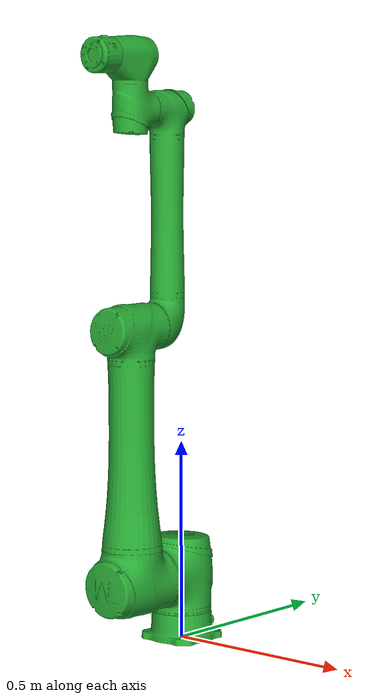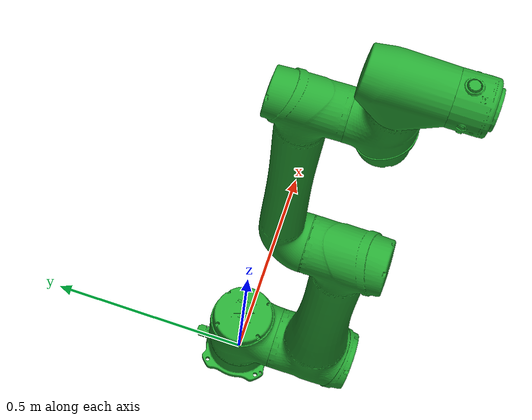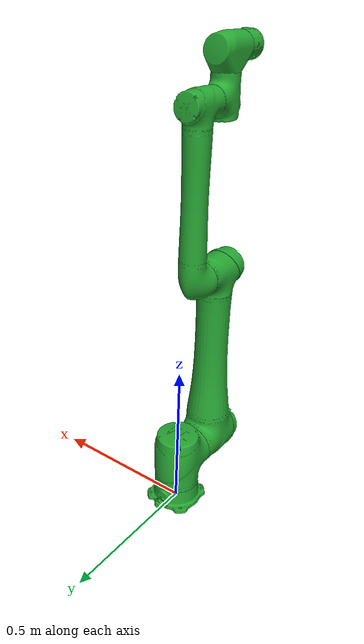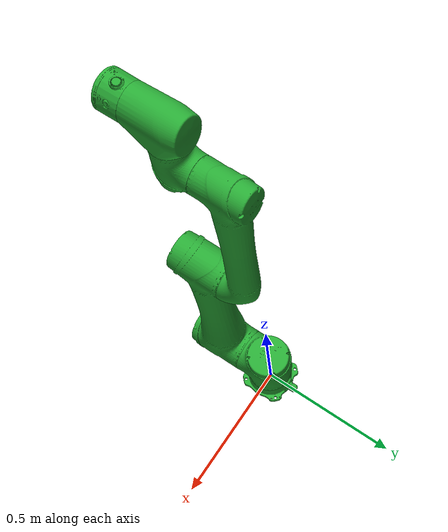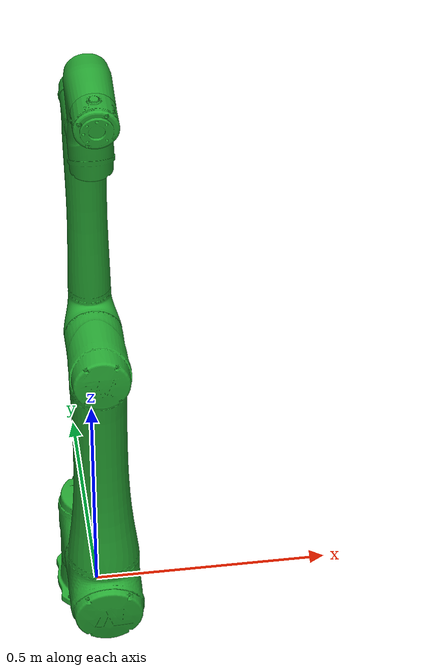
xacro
<?xml version="1.0"?>
<robot xmlns:xacro="http://www.ros.org/wiki/xacro" name="tm20sx">
    <xacro:arg name="initial_positions_file" default="initial_positions.yaml" />

    <!-- Import tm20sx urdf file -->
    <xacro:include filename="$(find tm_description)/xacro/tm20sx.urdf.xacro" />

    <!-- Import control_xacro -->
    <xacro:include filename="tm20sx.ros2_control.xacro" />

    <xacro:tm20sx_ros2_control name="FakeSystem" initial_positions_file="$(arg initial_positions_file)"/>

</robot>

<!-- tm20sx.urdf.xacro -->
<robot xmlns:xacro="http://www.ros.org/wiki/xacro" name="tm20sx">
  <!-- ARGUMENTS -->
  <xacro:arg name="ns" default="" />
  <xacro:arg name="prefix" default="" />
  <xacro:arg name="color" default="none" />
  <xacro:arg name="trans_hw_iface" default="hardware_interface/PositionJointInterface" />

  <xacro:include filename="$(find tm_description)/xacro/macro.gazebo.xacro" />
  <xacro:include filename="$(find tm_description)/xacro/macro.transmission.xacro" />
  <xacro:include filename="$(find tm_description)/xacro/macro.materials.xacro" />

  <!-- Import TM Cobot: tm20sx robot description file -->
  <!-- If the user want to use newly generated named robot description file as user_defined.urdf.xacro, -->
  <!-- you must modify 'macro.tm20sx-nominal.urdf.xacro' to 'user_defined.urdf.xacro'  -->
  <xacro:include filename="$(find tm_description)/xacro/macro.tm20sx-nominal.urdf.xacro" />

  <xacro:tmr_gazebo ns="$(arg ns)" prefix="$(arg prefix)" />
  <xacro:tmr_transmission prefix="$(arg prefix)" hw_iface="$(arg trans_hw_iface)" />

  <!-- Import TM Cobot: mesh.color.default -->
  <xacro:property name="color" value="$(arg color)"/>
  <xacro:if value="${color == 'none'}">
    <xacro:tm20sx ns="$(arg ns)" prefix="$(arg prefix)" color="emeraldgreen" format="dae"/>
  </xacro:if>

  <!-- Import TM Cobot: mesh.color.specific-->
  <xacro:unless value="${color == 'none'}">
    <xacro:tm20sx ns="$(arg ns)" prefix="$(arg prefix)" color="${color}" format="obj" />
  </xacro:unless>

</robot>

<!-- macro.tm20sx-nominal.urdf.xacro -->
<robot xmlns:xacro="http://www.ros.org/wiki/xacro">

  <xacro:include filename="$(find tm_description)/xacro/macro.inertial.xacro" />

  <xacro:macro name="tm20sx" params="ns prefix color format
    joint_1_lower_limit:=${radians(-360)}    joint_1_upper_limit:=${radians(360)}
    joint_2_lower_limit:=${radians(-360)}    joint_2_upper_limit:=${radians(360)}
    joint_3_lower_limit:=${radians(-162)}    joint_3_upper_limit:=${radians(162)}
    joint_4_lower_limit:=${radians(-360)}    joint_4_upper_limit:=${radians(360)}
    joint_5_lower_limit:=${radians(-360)}    joint_5_upper_limit:=${radians(360)}
    joint_6_lower_limit:=${radians(-360)}    joint_6_upper_limit:=${radians(360)}
    joint_1_velocity_limit:=${radians(130)}
    joint_2_velocity_limit:=${radians(95)}
    joint_3_velocity_limit:=${radians(125)}
    joint_4_velocity_limit:=${radians(160)}
    joint_5_velocity_limit:=${radians(190)}
    joint_6_velocity_limit:=${radians(225)}
    joint_1_effort_limit:=${459}
    joint_2_effort_limit:=${484}
    joint_3_effort_limit:=${229}
    joint_4_effort_limit:=${70}
    joint_5_effort_limit:=${54}
    joint_6_effort_limit:=${34}
    safety_limits:=false safety_pos_margin:=0.15
    safety_k_position:=20">

    <xacro:property name="damping_factor" value="0.000"/>
    <xacro:property name="d1" value="${damping_factor*0.1}"/>
    <xacro:property name="d2" value="${damping_factor*0.1}"/>
    <xacro:property name="d3" value="${damping_factor*0.1}"/>
    <xacro:property name="d4" value="${damping_factor*0.1}"/>
    <xacro:property name="d5" value="${damping_factor*0.1}"/>
    <xacro:property name="d6" value="${damping_factor*0.1}"/>

    <xacro:property name="friction_factor" value="0.000"/>
    <xacro:property name="f1" value="${friction_factor*0.1}"/>
    <xacro:property name="f2" value="${friction_factor*0.1}"/>
    <xacro:property name="f3" value="${friction_factor*0.1}"/>
    <xacro:property name="f4" value="${friction_factor*0.1}"/>
    <xacro:property name="f5" value="${friction_factor*0.1}"/>
    <xacro:property name="f6" value="${friction_factor*0.1}"/>

    <!-- Inertia parameters -->
    <xacro:property name="mass_0" value="1.0" />
    <xacro:property name="mass_1" value="8.200" />
    <xacro:property name="mass_2" value="15.017" />
    <xacro:property name="mass_3" value="3.329" />
    <xacro:property name="mass_4" value="1.770" />
    <xacro:property name="mass_5" value="1.770" />
    <xacro:property name="mass_6" value="0.340" />

    <xacro:property name="unit_factor" value="0.000001"/>
    <xacro:property name="ixx_1" value="${25963.078*unit_factor}" />
    <xacro:property name="ixx_2" value="${56178.979*unit_factor}" />
    <xacro:property name="ixx_3" value="${4694.5431*unit_factor}" />
    <xacro:property name="ixx_4" value="${2046.0318*unit_factor}" />
    <xacro:property name="ixx_5" value="${2046.0318*unit_factor}" />
    <xacro:property name="ixx_6" value="${250.85804*unit_factor}" />

    <xacro:property name="iyy_1" value="${37671.229*unit_factor}" />
    <xacro:property name="iyy_2" value="${1212610.4*unit_factor}" />
    <xacro:property name="iyy_3" value="${134098.54*unit_factor}" />
    <xacro:property name="iyy_4" value="${3171.8293*unit_factor}" />
    <xacro:property name="iyy_5" value="${3171.8293*unit_factor}" />
    <xacro:property name="iyy_6" value="${252.81701*unit_factor}" />

    <xacro:property name="izz_1" value="${38856.370*unit_factor}" />
    <xacro:property name="izz_2" value="${1231270.0*unit_factor}" />
    <xacro:property name="izz_3" value="${135525.91*unit_factor}" />
    <xacro:property name="izz_4" value="${3478.9518*unit_factor}" />
    <xacro:property name="izz_5" value="${3478.9518*unit_factor}" />
    <xacro:property name="izz_6" value="${312.21304*unit_factor}" />

    <xacro:property name="specified_color_arms" default="false" />
    <xacro:property name="prefix_monochrome_command" default="true" />

    <!-- If other applications conflict with the color definition of URDF, try disable_prefix_color to close it -->
    <xacro:property name="disable_prefix_color" default="false" />
    <xacro:if value="${disable_prefix_color}">
      <prefix_monochrome_command value="false"/>
    </xacro:if>
    <xacro:if value="${format == 'stl'}">
      <specified_color_arms value="true"/>
      <prefix_monochrome_command value="false"/>
    </xacro:if>
    <xacro:if value="${prefix_monochrome_command}">
      <xacro:tm_materials/>
    </xacro:if>

<!--LinkDescription-->
  <link name="${prefix}link_0">
    <visual>
      <geometry>
        <mesh filename="package://tm_description/meshes/tm20sx/visual/link0.${format}" />
      </geometry>
      <xacro:if value="${specified_color_arms}">
        <xacro:tm_material_whitegraphite />
      </xacro:if>
      <xacro:if value="${prefix_monochrome_command}">
        <material name="${color}" />
      </xacro:if>
    </visual>
    <collision>
      <geometry>
        <mesh filename="package://tm_description/meshes/tm20sx/collision/link0_c.stl" />
      </geometry>
    </collision>
<!--inertial-->
    <xacro:cylinder_inertial_z radius="0.06" length="0.05" mass="${mass_0}">
      <origin rpy="0.000000 0.000000 0.000000" xyz="0.000000 0.000000 0.000000" />
    </xacro:cylinder_inertial_z>
  </link>
  <joint name="${prefix}joint_1" type="revolute">
    <parent link="${prefix}link_0" />
    <child link="${prefix}link_1" />
    <origin rpy="0.000000 -0.000000 0.000000" xyz="0.000000 0.000000 0.165200" />
    <axis xyz="0 0 1" />
<!--limit-->
    <limit lower="${joint_1_lower_limit}" upper="${joint_1_upper_limit}" velocity="${joint_1_velocity_limit}" effort="${joint_1_effort_limit}" />
    <xacro:if value="${safety_limits}">
      <safety_controller soft_lower_limit="${joint_1_lower_limit + safety_pos_margin}" soft_upper_limit="${joint_1_upper_limit - safety_pos_margin}" k_position="${safety_k_position}" k_velocity="0.0" />
    </xacro:if>
    <dynamics damping="${d1}" friction="${f1}" />
  </joint>
  <link name="${prefix}link_1">
    <visual>
      <geometry>
        <mesh filename="package://tm_description/meshes/tm20sx/visual/link1.${format}" />
      </geometry>
      <xacro:if value="${specified_color_arms}">
        <xacro:tm_material_darkolive />
      </xacro:if>
      <xacro:if value="${prefix_monochrome_command}">
        <material name="${color}" />
      </xacro:if>
    </visual>
    <collision>
      <geometry>
        <mesh filename="package://tm_description/meshes/tm20sx/collision/link1_c.stl" />
      </geometry>
    </collision>
    <inertial>
      <origin rpy="0.000000 0.000000 0.000000" xyz="0.000000 0.000000 0.000000" />
      <mass value="${mass_1}" />
      <inertia ixx="${ixx_1}" ixy="0.000000" ixz="0.000000" iyy="${iyy_1}" iyz="0.000000" izz="${izz_1}" />
    </inertial>
  </link>
  <joint name="${prefix}joint_2" type="revolute">
    <parent link="${prefix}link_1" />
    <child link="${prefix}link_2" />
    <origin rpy="-1.570796 -1.570796 0.000000" xyz="0.000000 0.000000 0.000000" />
    <axis xyz="0 0 1" />
<!--limit-->
    <limit lower="${joint_2_lower_limit}" upper="${joint_2_upper_limit}" velocity="${joint_2_velocity_limit}" effort="${joint_2_effort_limit}" />
    <xacro:if value="${safety_limits}">
      <safety_controller soft_lower_limit="${joint_2_lower_limit + safety_pos_margin}" soft_upper_limit="${joint_2_upper_limit - safety_pos_margin}" k_position="${safety_k_position}" k_velocity="0.0" />
    </xacro:if>
    <dynamics damping="${d2}" friction="${f2}" />
  </joint>
  <link name="${prefix}link_2">
    <visual>
      <geometry>
        <mesh filename="package://tm_description/meshes/tm20sx/visual/link2.${format}" />
      </geometry>
      <xacro:if value="${specified_color_arms}">
        <xacro:tm_material_darkolive />
      </xacro:if>
      <xacro:if value="${prefix_monochrome_command}">
        <material name="${color}" />
      </xacro:if>
    </visual>
    <collision>
      <geometry>
        <mesh filename="package://tm_description/meshes/tm20sx/collision/link2_c.stl" />
      </geometry>
    </collision>
    <inertial>
      <origin rpy="0.000000 0.000000 0.000000" xyz="0.000000 0.000000 0.000000" />
      <mass value="${mass_2}" />
      <inertia ixx="${ixx_2}" ixy="0.000000" ixz="0.000000" iyy="${iyy_2}" iyz="0.000000" izz="${izz_2}" />
    </inertial>
  </link>
  <joint name="${prefix}joint_3" type="revolute">
    <parent link="${prefix}link_2" />
    <child link="${prefix}link_3" />
    <origin rpy="0.000000 -0.000000 0.000000" xyz="0.636100 0.000000 0.000000" />
    <axis xyz="0 0 1" />
<!--limit-->
    <limit lower="${joint_3_lower_limit}" upper="${joint_3_upper_limit}" velocity="${joint_3_velocity_limit}" effort="${joint_3_effort_limit}" />
    <xacro:if value="${safety_limits}">
      <safety_controller soft_lower_limit="${joint_3_lower_limit + safety_pos_margin}" soft_upper_limit="${joint_3_upper_limit - safety_pos_margin}" k_position="${safety_k_position}" k_velocity="0.0" />
    </xacro:if>
    <dynamics damping="${d3}" friction="${f3}" />
  </joint>
  <link name="${prefix}link_3">
    <visual>
      <geometry>
        <mesh filename="package://tm_description/meshes/tm20sx/visual/link3.${format}" />
      </geometry>
      <xacro:if value="${specified_color_arms}">
        <xacro:tm_material_gold />
      </xacro:if>
      <xacro:if value="${prefix_monochrome_command}">
        <material name="${color}" />
      </xacro:if>
    </visual>
    <collision>
      <geometry>
        <mesh filename="package://tm_description/meshes/tm20sx/collision/link3_c.stl" />
      </geometry>
    </collision>
    <inertial>
      <origin rpy="0.000000 0.000000 0.000000" xyz="0.000000 0.000000 0.000000" />
      <mass value="${mass_3}" />
      <inertia ixx="${ixx_3}" ixy="0.000000" ixz="0.000000" iyy="${iyy_3}" iyz="0.000000" izz="${izz_3}" />
    </inertial>
  </link>
  <joint name="${prefix}joint_4" type="revolute">
    <parent link="${prefix}link_3" />
    <child link="${prefix}link_4" />
    <origin rpy="0.000000 -0.000000 1.570796" xyz="0.532400 0.000000 -0.181800" />
    <axis xyz="0 0 1" />
<!--limit-->
    <limit lower="${joint_4_lower_limit}" upper="${joint_4_upper_limit}" velocity="${joint_4_velocity_limit}" effort="${joint_4_effort_limit}" />
    <xacro:if value="${safety_limits}">
      <safety_controller soft_lower_limit="${joint_4_lower_limit + safety_pos_margin}" soft_upper_limit="${joint_4_upper_limit - safety_pos_margin}" k_position="${safety_k_position}" k_velocity="0.0" />
    </xacro:if>
    <dynamics damping="${d4}" friction="${f4}" />
  </joint>
  <link name="${prefix}link_4">
    <visual>
      <geometry>
        <mesh filename="package://tm_description/meshes/tm20sx/visual/link4.${format}" />
      </geometry>
      <xacro:if value="${specified_color_arms}">
        <xacro:tm_material_darkolive />
      </xacro:if>
      <xacro:if value="${prefix_monochrome_command}">
        <material name="${color}" />
      </xacro:if>
    </visual>
    <collision>
      <geometry>
        <mesh filename="package://tm_description/meshes/tm20sx/collision/link4_c.stl" />
      </geometry>
    </collision>
    <inertial>
      <origin rpy="0.000000 0.000000 0.000000" xyz="0.000000 0.000000 0.000000" />
      <mass value="${mass_4}" />
      <inertia ixx="${ixx_4}" ixy="0.000000" ixz="0.000000" iyy="${iyy_4}" iyz="0.000000" izz="${izz_4}" />
    </inertial>
  </link>
  <joint name="${prefix}joint_5" type="revolute">
    <parent link="${prefix}link_4" />
    <child link="${prefix}link_5" />
    <origin rpy="1.570796 -0.000000 0.000000" xyz="0.000000 -0.131500 0.000000" />
    <axis xyz="0 0 1" />
<!--limit-->
    <limit lower="${joint_5_lower_limit}" upper="${joint_5_upper_limit}" velocity="${joint_5_velocity_limit}" effort="${joint_5_effort_limit}" />
    <xacro:if value="${safety_limits}">
      <safety_controller soft_lower_limit="${joint_5_lower_limit + safety_pos_margin}" soft_upper_limit="${joint_5_upper_limit - safety_pos_margin}" k_position="${safety_k_position}" k_velocity="0.0" />
    </xacro:if>
    <dynamics damping="${d5}" friction="${f5}" />
  </joint>
  <link name="${prefix}link_5">
    <visual>
      <geometry>
        <mesh filename="package://tm_description/meshes/tm20sx/visual/link5.${format}" />
      </geometry>
      <xacro:if value="${specified_color_arms}">
        <xacro:tm_material_darkolive />
      </xacro:if>
      <xacro:if value="${prefix_monochrome_command}">
        <material name="${color}" />
      </xacro:if>
    </visual>
    <collision>
      <geometry>
        <mesh filename="package://tm_description/meshes/tm20sx/collision/link5_c.stl" />
      </geometry>
    </collision>
    <inertial>
      <origin rpy="0.000000 0.000000 0.000000" xyz="0.000000 0.000000 0.000000" />
      <mass value="${mass_5}" />
      <inertia ixx="${ixx_5}" ixy="0.000000" ixz="0.000000" iyy="${iyy_5}" iyz="0.000000" izz="${izz_5}" />
    </inertial>
  </link>
  <joint name="${prefix}joint_6" type="revolute">
    <parent link="${prefix}link_5" />
    <child link="${prefix}link_6" />
    <origin rpy="1.570796 -0.000000 0.000000" xyz="0.000000 -0.134950 0.000000" />
    <axis xyz="0 0 1" />
<!--limit-->
    <limit lower="${joint_6_lower_limit}" upper="${joint_6_upper_limit}" velocity="${joint_6_velocity_limit}" effort="${joint_6_effort_limit}" />
    <xacro:if value="${safety_limits}">
      <safety_controller soft_lower_limit="${joint_6_lower_limit + safety_pos_margin}" soft_upper_limit="${joint_6_upper_limit - safety_pos_margin}" k_position="${safety_k_position}" k_velocity="0.0" />
    </xacro:if>
    <dynamics damping="${d6}" friction="${f6}" />
  </joint>
  <link name="${prefix}link_6">
    <visual>
      <geometry>
        <mesh filename="package://tm_description/meshes/tm20sx/visual/link6.${format}" />
      </geometry>
      <xacro:if value="${specified_color_arms}">
        <xacro:tm_material_purewhite />
      </xacro:if>
      <xacro:if value="${prefix_monochrome_command}">
        <material name="${color}" />
      </xacro:if>
    </visual>
    <collision>
      <geometry>
        <mesh filename="package://tm_description/meshes/tm20sx/collision/link6_c.stl" />
      </geometry>
    </collision>
    <inertial>
      <origin rpy="0.000000 0.000000 0.000000" xyz="0.000000 0.000000 0.000000" />
      <mass value="${mass_6}" />
      <inertia ixx="${ixx_6}" ixy="0.000000" ixz="0.000000" iyy="${iyy_6}" iyz="0.000000" izz="${izz_6}" />
    </inertial>
  </link>
  <link name="${prefix}base" />
  <joint name="${prefix}base_fixed_joint" type="fixed">
    <parent link="${prefix}base" />
    <child link="${prefix}link_0" />
    <origin rpy="0.000000 0.000000 0.000000" xyz="0.000000 0.000000 0.000000" />
  </joint>
  <link name="${prefix}flange" />
  <joint name="${prefix}flange_fixed_joint" type="fixed">
    <parent link="${prefix}link_6" />
    <child link="${prefix}flange" />
    <origin rpy="0.000000 0.000000 0.000000" xyz="0.000000 0.000000 0.000000" />
  </joint>
<!--LinkDescription-->

  </xacro:macro>

</robot>
